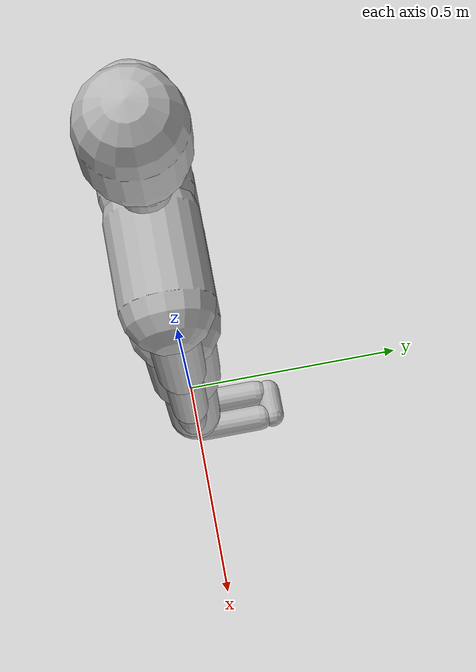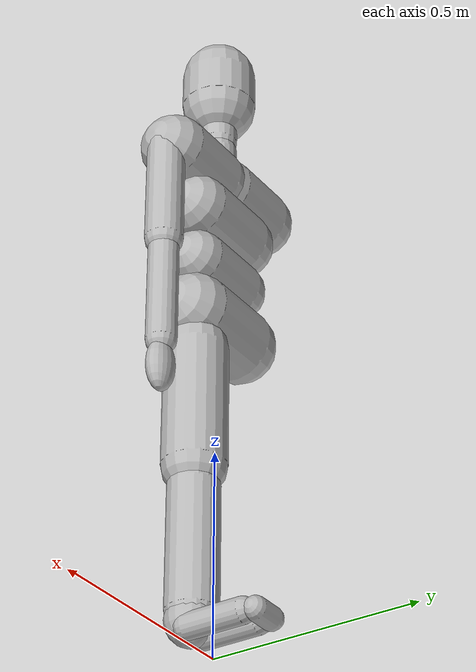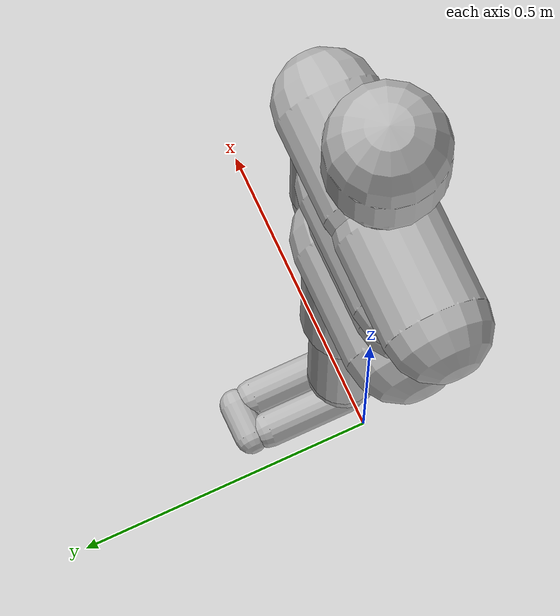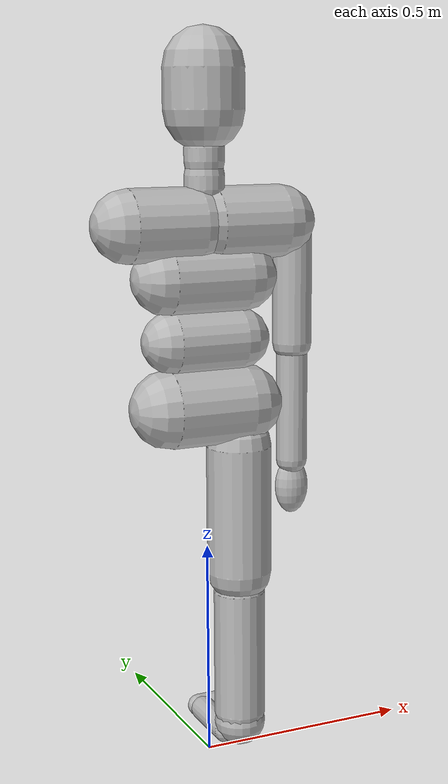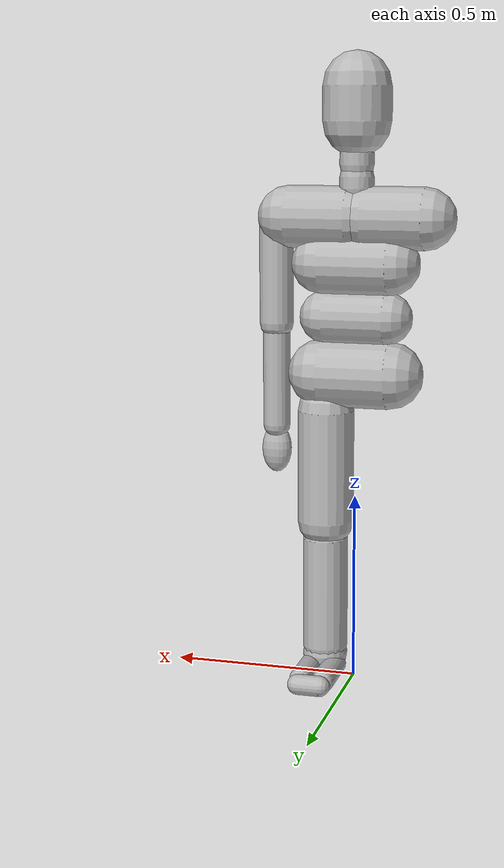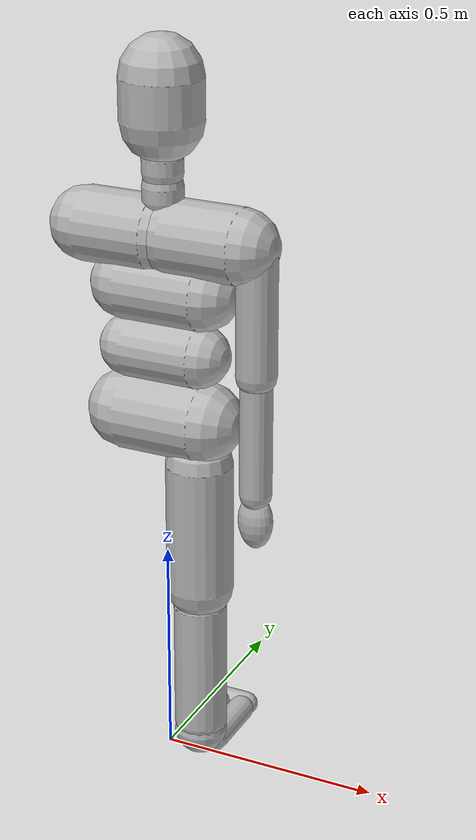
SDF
<?xml version='1.0' ?>
<!-- Humanoid model
Toyota Research Institute-->
<sdf version='1.6'>
  <model name='humanoid_v1'>
    <pose>0.0 0.0 0 0 0 0</pose>

    <link name='waist'>
      <pose>0 0 0.98 0 0 0</pose>
      <inertial>
        <mass>100</mass>
        <pose>0 0 0 0 0 0</pose>
      </inertial>
      <visual name="cap_waist">
        <pose>0 0 0 0 1.5708 0</pose>
        <geometry>
          <capsule>
            <radius>0.07</radius>
            <length>0.16</length>
          </capsule>
        </geometry>
        <material>
          <specular>1 1 0.1 1</specular>
        </material>
      </visual>
    </link>

    <link name='torso'>
      <pose relative_to='waist'>0 0 0.20 0 0 0</pose>
      <inertial>
        <mass>100</mass>
        <pose>0 0 0 0 0 0</pose>
      </inertial>
      <visual name="cap_upper_L">
        <pose>-0.1 0 0.06 0 1.5708 0</pose>
        <geometry>
          <capsule>
            <radius>0.082</radius>
            <length>0.16</length>
          </capsule>
        </geometry>
      </visual>
      <visual name="cap_upper_R">
        <pose>0.1 0 0.06 0 1.5708 0</pose>
        <geometry>
          <capsule>
            <radius>0.082</radius>
            <length>0.16</length>
          </capsule>
        </geometry>
      </visual>
      <visual name="cap_lower">
        <pose>0 0.005 -0.06 0 1.5708 0</pose>
        <geometry>
          <capsule>
            <radius>0.08</radius>
            <length>0.18</length>
          </capsule>
        </geometry>
        <material>
          <specular>1 1 0.1 1</specular>
        </material>
      </visual>
      <visual name="cap_lower_neck">
        <pose>0 0 0.15 0 0 0</pose>
        <geometry>
          <capsule>
            <radius>0.045</radius>
            <length>0.03</length>
          </capsule>
        </geometry>
      </visual>
    </link>

    <link name='head'>
      <pose relative_to='torso'>0 0 0.35 0 0 0</pose>
      <inertial>
        <mass>100</mass>
      </inertial>
      <visual name="cap_face">
        <pose>0 0 0 0 0 0</pose>
        <geometry>
          <capsule>
            <radius>0.09</radius>
            <length>0.09</length>
          </capsule>
        </geometry>
      </visual>
      <visual name="cap_upper_neck">
        <pose>0 0 -0.14 0 0 0</pose>
        <geometry>
          <capsule>
            <radius>0.045</radius>
            <length>0.03</length>
          </capsule>
        </geometry>
      </visual>
    </link>

    <link name='forearm_L'>
      <pose relative_to='torso'>0.215 0 -0.08 0 0 0</pose>
      <inertial>
        <mass>100</mass>
      </inertial>
      <visual name="cyl_forearm">
        <pose>0 0 0 0 0 0</pose>
        <geometry>
          <capsule>
            <radius>0.045</radius>
            <length>0.28</length>
          </capsule>
        </geometry>
      </visual>
    </link>

    <link name='arm_L'>
      <pose relative_to='forearm_L'>0 0 -0.29 0 0 0</pose>
      <inertial>
        <mass>100</mass>
      </inertial>
      <visual name="cyl_arm">
        <pose>0 0 0 0 0 0</pose>
        <geometry>
          <capsule>
            <radius>0.036</radius>
            <length>0.25</length>
          </capsule>
        </geometry>
      </visual>
    </link>

    <link name='hand_L'>
      <pose relative_to='arm_L'>0 0 -0.19 0 0 0</pose>
      <inertial>
        <mass>100</mass>
      </inertial>
      <visual name="ellip_hand">
        <pose>0 0 0 0 0 0</pose>
        <geometry>
          <ellipsoid>
            <radii>0.04 0.03 0.065</radii>
          </ellipsoid>
        </geometry>
      </visual>
    </link>

    <link name='hips'>
      <pose relative_to='waist'>0 0 -0.15 0 0 0</pose>
      <inertial>
        <mass>100</mass>
      </inertial>
      <visual name="cap_hips">
        <pose>0 0 0 0 1.5708 0</pose>
        <geometry>
          <capsule>
            <radius>0.09</radius>
            <length>0.18</length>
          </capsule>
        </geometry>
      </visual>
    </link>

    <link name='upper_leg_L'>
      <pose relative_to='hips'>0.08 0 -0.25 0 0 0</pose>
      <inertial>
        <mass>100</mass>
      </inertial>
      <visual name="cap_uleg">
        <pose>0 0 0 0 0 0</pose>
        <geometry>
          <capsule>
            <radius>0.075</radius>
            <length>0.30</length>
          </capsule>
        </geometry>
      </visual>
    </link>

    <link name='lower_leg_L'>
      <pose relative_to='upper_leg_L'>0 0.0 -0.35 0 0 0</pose>
      <inertial>
        <mass>100</mass>
      </inertial>
      <visual name="cyl_lleg">
        <pose>0 0 0 0 0 0</pose>
        <geometry>
          <capsule>
            <radius>0.06</radius>
            <length>0.3</length>
          </capsule>
        </geometry>
      </visual>
    </link>

    <link name='foot_L'>
      <pose relative_to='lower_leg_L'>0 0.08 -0.2 0 0 0</pose>
      <inertial>
        <mass>100</mass>
      </inertial>
      <visual name="sph_ankle">
        <pose>0 -0.08 0.028 0 0 0</pose>
        <geometry>
          <sphere>
            <radius>0.06</radius>
          </sphere>
        </geometry>
      </visual>
      <visual name="cap1_foot">
        <pose>-0.03 0.0 0 1.5708 0 0</pose>
        <geometry>
          <capsule>
            <radius>0.03</radius>
            <length>0.14</length>
          </capsule>
        </geometry>
      </visual>
      <visual name="cap2_foot">
        <pose>0.03 0.0 0 1.5708 0 0</pose>
        <geometry>
          <capsule>
            <radius>0.03</radius>
            <length>0.14</length>
          </capsule>
        </geometry>
      </visual>
    </link>

    <link name='toes_L'>
      <pose relative_to='foot_L'>0 0.1 -0.003 0 0 0</pose>
      <inertial>
        <mass>100</mass>
      </inertial>
      <visual name="cap_toes">
        <pose>0 0 0 0 1.5708 0</pose>
        <geometry>
          <capsule>
            <radius>0.027</radius>
            <length>0.06</length>
          </capsule>
        </geometry>
      </visual>
    </link>

    <!-- ball joint for neck -->
    <joint name='neck_joint' type='ball'>
      <parent>torso</parent>
      <child>head</child>
      <pose>0 0 -0.18 0 0 0</pose>
      <axis>
        <xyz>0.0 0.0 1.0</xyz>
        <limit>
          <lower>-0.3</lower>
          <upper>0.3</upper>
          <effort>10.0</effort>
        </limit>
      </axis>
    </joint>

    <!-- universal joint for shoulder-->
    <joint name='shoulderL_joint' type='universal'>
      <parent>torso</parent>
      <child>forearm_L</child>
      <pose>0 0 0.15 0 0 1.5708 </pose>
      <axis>
        <xyz>1.0 0.0 0.0</xyz>
        <limit>
          <lower>-0.7853</lower>
          <upper>0.7853</upper>
          <effort>10.0</effort>
        </limit>
      </axis>
      <axis2>
        <xyz>0.0 1.0 0</xyz>
        <limit>
          <lower>-0.7853</lower>
          <upper>0.7853</upper>
          <effort>10.0</effort>
        </limit>
      </axis2>
    </joint>

    <!-- revolute joint for elbow -->
    <joint name='elbowL_joint' type='revolute'>
      <parent>forearm_L</parent>
      <child>arm_L</child>
      <pose>0 0 0.15 0 0 0 </pose>
      <axis>
        <xyz>1.0 0.0 0.0</xyz>
        <limit>
          <lower>-0.01</lower>
          <upper>2.3</upper>
          <effort>10.0</effort>
        </limit>
      </axis>
    </joint>

    <!-- revolute joint for wrist -->
    <joint name='wristL_joint' type='revolute'>
      <parent>arm_L</parent>
      <child>hand_L</child>
      <pose>0 0 0.05 0 0 0 </pose>
      <axis>
        <xyz>1.0 0.0 0.0</xyz>
        <limit>
          <lower>-1.5</lower>
          <upper>1.5</upper>
          <effort>10.0</effort>
        </limit>
      </axis>
    </joint>

    <!-- ball joint for torso and waist link -->
    <joint name='waist_weld' type='fixed'>
      <parent>hips</parent>
      <child>waist</child>
      <pose>0 0 0 0 0 0</pose>
      <axis>
        <xyz>1.0 0.0 0.0</xyz>
      </axis>
    </joint>

    <!-- ball joint for torso and waist link -->
    <joint name='torso_joint' type='ball'>
      <parent>waist</parent>
      <child>torso</child>
      <pose>0 0 -0.1 0 0 0</pose>
      <axis>
        <xyz>0.0 0.0 1.0</xyz>
        <limit>
          <lower>-0.3</lower>
          <upper>0.3</upper>
          <effort>10.0</effort>
        </limit>
      </axis>
    </joint>

    <!-- universal joint for hip L-->
    <joint name='hipL_joint' type='universal'>
      <parent>upper_leg_L</parent>
      <child>hips</child>
      <pose>0.09 0 -0.02 0 0 1.5708 </pose>
      <axis>
        <xyz>1.0 0.0 0.0</xyz>
        <limit>
          <lower>-0.7853</lower>
          <upper>0.7853</upper>
          <effort>10.0</effort>
        </limit>
      </axis>
      <axis2>
        <xyz>0.0 1.0 0</xyz>
        <limit>
          <lower>-0.52</lower>
          <upper>1.74</upper>
          <effort>10.0</effort>
        </limit>
      </axis2>
    </joint>

    <!-- revolute joint for knee L -->
    <joint name='kneeL_joint' type='revolute'>
      <parent>lower_leg_L</parent>
      <child>upper_leg_L</child>
      <pose>0 0 -0.15 0 0 0 </pose>
      <axis>
        <xyz>1.0 0.0 0.0</xyz>
        <limit>
          <lower>-0.1</lower>
          <upper>1.74</upper>
          <effort>10.0</effort>
        </limit>
      </axis>
    </joint>

    <!-- ball joint for ankle -->
    <joint name='ankleL_joint' type='ball'>
      <parent>foot_L</parent>
      <child>lower_leg_L</child>
      <pose>0 0 -0.17 0 0 0</pose>
      <axis>
        <xyz>0.0 0.0 1.0</xyz>
        <limit>
          <lower>-0.1</lower>
          <upper>0.1</upper>
          <effort>10.0</effort>
        </limit>
      </axis>
    </joint>

    <!-- revolute joint for toes L -->
    <joint name='toesL_joint' type='revolute'>
      <parent>toes_L</parent>
      <child>foot_L</child>
      <pose>0 0.1 0 0 0 0 </pose>
      <axis>
        <xyz>1.0 0.0 0.0</xyz>
        <limit>
          <lower>-0.15</lower>
          <upper>0</upper>
          <effort>10.0</effort>
        </limit>
      </axis>
    </joint>

  </model>
</sdf>
